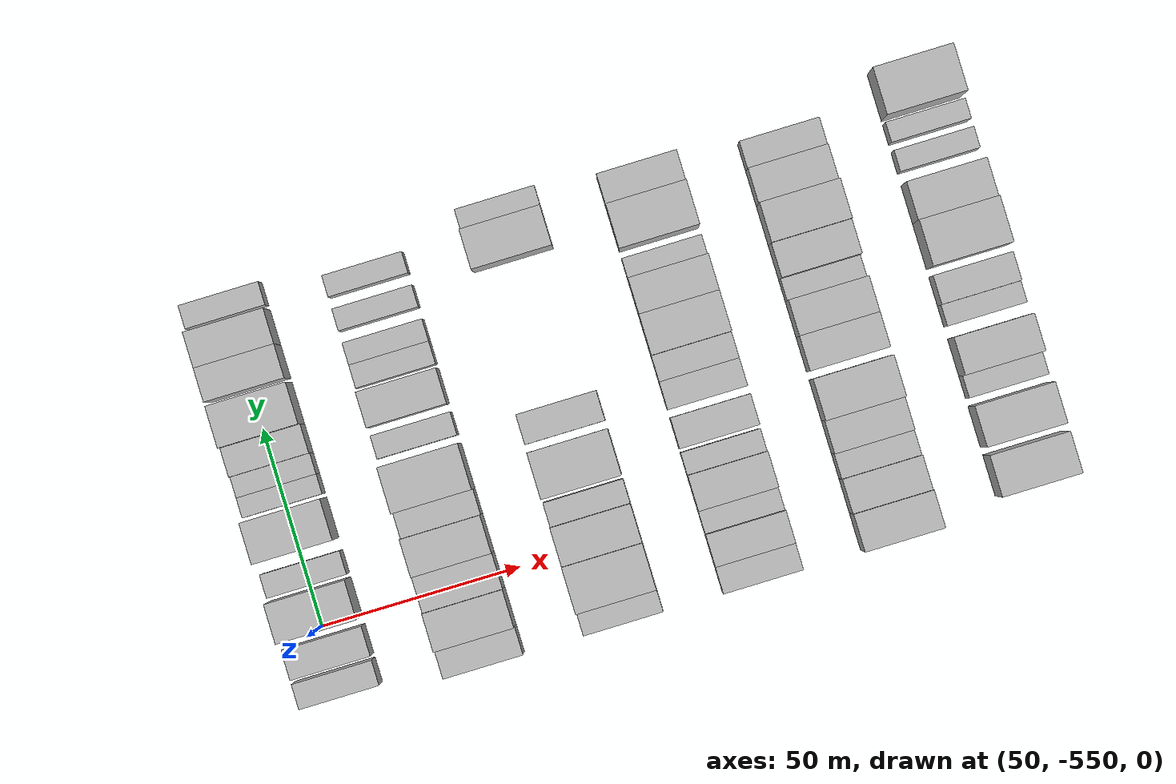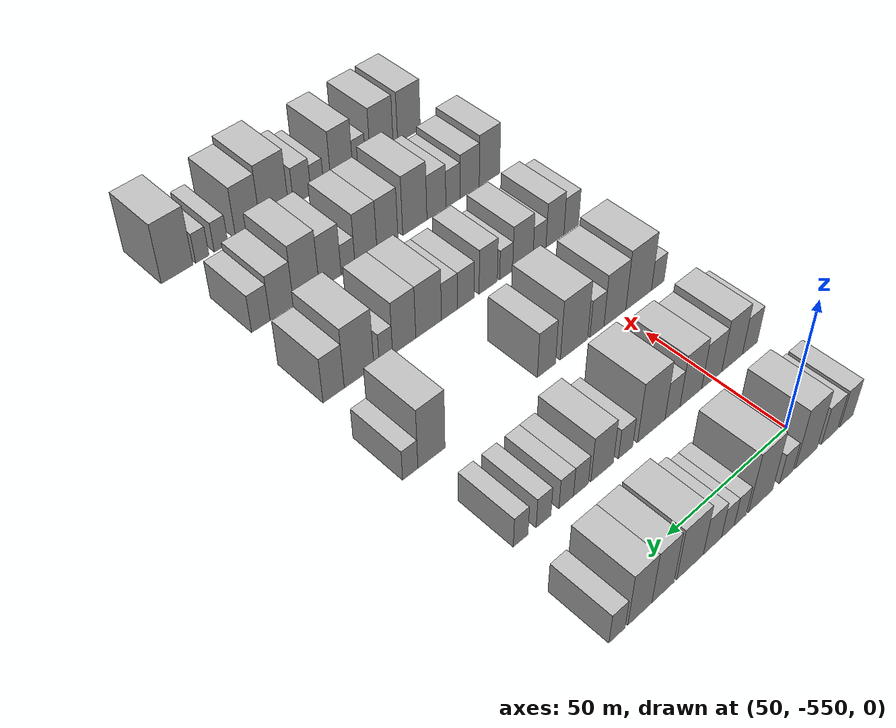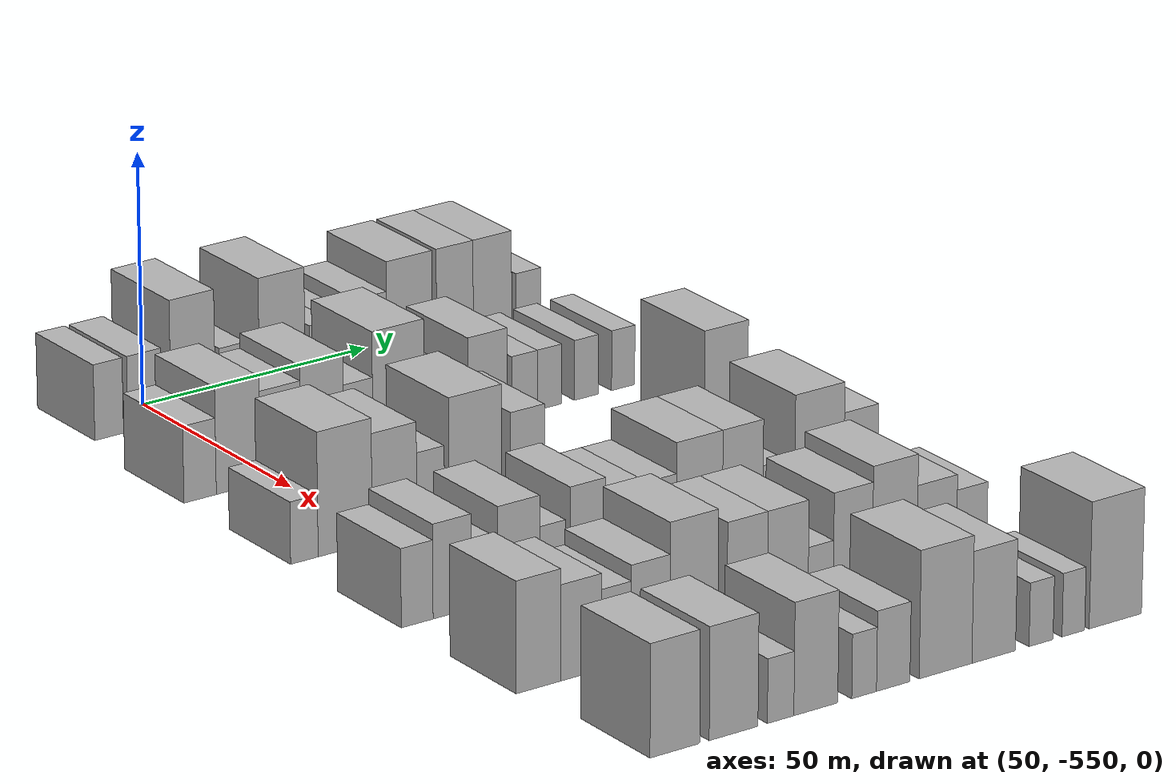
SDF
<sdf version="1.6">
 <world name="default">
  <model name="building_1">
   <static>1</static>
   <pose>50.0000 -563.8621 0 0.000000 0.000000 0.000000</pose>
   <link name="link">
    <pose>0 0 7.50 0 0 0</pose>
    <collision name="collision"><geometry><box><size>20.0000 6.2758 15.0000</size></box></geometry></collision>
    <visual name="visual">
     <cast_shadows>0</cast_shadows>
     <geometry><box><size>20.0000 6.2758 15.0000</size></box></geometry>
     <material>
      <script>
       <uri>model://HANNAS_wall/materials/scripts</uri>
       <uri>model://HANNAS_wall/materials/textures</uri>
       <name>vrc/HANNAS_wall</name>
      </script>
     </material>
    </visual>
   </link>
  </model>
  <model name="building_2">
   <static>1</static>
   <pose>50.0000 -555.9745 0 0.000000 0.000000 0.000000</pose>
   <link name="link">
    <pose>0 0 7.50 0 0 0</pose>
    <collision name="collision"><geometry><box><size>20.0000 7.4994 15.0000</size></box></geometry></collision>
    <visual name="visual">
     <cast_shadows>0</cast_shadows>
     <geometry><box><size>20.0000 7.4994 15.0000</size></box></geometry>
     <material>
      <script>
       <uri>model://HANNAS_wall/materials/scripts</uri>
       <uri>model://HANNAS_wall/materials/textures</uri>
       <name>vrc/HANNAS_wall</name>
      </script>
     </material>
    </visual>
   </link>
  </model>
  <model name="building_3">
   <static>1</static>
   <pose>50.0000 -545.3114 0 0.000000 0.000000 0.000000</pose>
   <link name="link">
    <pose>0 0 12.00 0 0 0</pose>
    <collision name="collision"><geometry><box><size>20.0000 9.8267 24.0000</size></box></geometry></collision>
    <visual name="visual">
     <cast_shadows>0</cast_shadows>
     <geometry><box><size>20.0000 9.8267 24.0000</size></box></geometry>
     <material>
      <script>
       <uri>model://HANNAS_wall/materials/scripts</uri>
       <uri>model://HANNAS_wall/materials/textures</uri>
       <name>vrc/HANNAS_wall</name>
      </script>
     </material>
    </visual>
   </link>
  </model>
  <model name="building_4">
   <static>1</static>
   <pose>50.0000 -536.4724 0 0.000000 0.000000 0.000000</pose>
   <link name="link">
    <pose>0 0 6.00 0 0 0</pose>
    <collision name="collision"><geometry><box><size>20.0000 5.8513 12.0000</size></box></geometry></collision>
    <visual name="visual">
     <cast_shadows>0</cast_shadows>
     <geometry><box><size>20.0000 5.8513 12.0000</size></box></geometry>
     <material>
      <script>
       <uri>model://HANNAS_wall/materials/scripts</uri>
       <uri>model://HANNAS_wall/materials/textures</uri>
       <name>vrc/HANNAS_wall</name>
      </script>
     </material>
    </visual>
   </link>
  </model>
  <model name="building_5">
   <static>1</static>
   <pose>50.0000 -525.4141 0 0.000000 0.000000 0.000000</pose>
   <link name="link">
    <pose>0 0 12.00 0 0 0</pose>
    <collision name="collision"><geometry><box><size>20.0000 10.2654 24.0000</size></box></geometry></collision>
    <visual name="visual">
     <cast_shadows>0</cast_shadows>
     <geometry><box><size>20.0000 10.2654 24.0000</size></box></geometry>
     <material>
      <script>
       <uri>model://HANNAS_wall/materials/scripts</uri>
       <uri>model://HANNAS_wall/materials/textures</uri>
       <name>vrc/HANNAS_wall</name>
      </script>
     </material>
    </visual>
   </link>
  </model>
  <model name="building_6">
   <static>1</static>
   <pose>50.0000 -516.7839 0 0.000000 0.000000 0.000000</pose>
   <link name="link">
    <pose>0 0 6.00 0 0 0</pose>
    <collision name="collision"><geometry><box><size>20.0000 4.9949 12.0000</size></box></geometry></collision>
    <visual name="visual">
     <cast_shadows>0</cast_shadows>
     <geometry><box><size>20.0000 4.9949 12.0000</size></box></geometry>
     <material>
      <script>
       <uri>model://HANNAS_wall/materials/scripts</uri>
       <uri>model://HANNAS_wall/materials/textures</uri>
       <name>vrc/HANNAS_wall</name>
      </script>
     </material>
    </visual>
   </link>
  </model>
  <model name="building_7">
   <static>1</static>
   <pose>50.0000 -511.6738 0 0.000000 0.000000 0.000000</pose>
   <link name="link">
    <pose>0 0 6.00 0 0 0</pose>
    <collision name="collision"><geometry><box><size>20.0000 5.2255 12.0000</size></box></geometry></collision>
    <visual name="visual">
     <cast_shadows>0</cast_shadows>
     <geometry><box><size>20.0000 5.2255 12.0000</size></box></geometry>
     <material>
      <script>
       <uri>model://HANNAS_wall/materials/scripts</uri>
       <uri>model://HANNAS_wall/materials/textures</uri>
       <name>vrc/HANNAS_wall</name>
      </script>
     </material>
    </visual>
   </link>
  </model>
  <model name="building_8">
   <static>1</static>
   <pose>50.0000 -505.4208 0 0.000000 0.000000 0.000000</pose>
   <link name="link">
    <pose>0 0 7.50 0 0 0</pose>
    <collision name="collision"><geometry><box><size>20.0000 7.2805 15.0000</size></box></geometry></collision>
    <visual name="visual">
     <cast_shadows>0</cast_shadows>
     <geometry><box><size>20.0000 7.2805 15.0000</size></box></geometry>
     <material>
      <script>
       <uri>model://HANNAS_wall/materials/scripts</uri>
       <uri>model://HANNAS_wall/materials/textures</uri>
       <name>vrc/HANNAS_wall</name>
      </script>
     </material>
    </visual>
   </link>
  </model>
  <model name="building_9">
   <static>1</static>
   <pose>50.0000 -496.5619 0 0.000000 0.000000 0.000000</pose>
   <link name="link">
    <pose>0 0 10.50 0 0 0</pose>
    <collision name="collision"><geometry><box><size>20.0000 10.4373 21.0000</size></box></geometry></collision>
    <visual name="visual">
     <cast_shadows>0</cast_shadows>
     <geometry><box><size>20.0000 10.4373 21.0000</size></box></geometry>
     <material>
      <script>
       <uri>model://HANNAS_wall/materials/scripts</uri>
       <uri>model://HANNAS_wall/materials/textures</uri>
       <name>vrc/HANNAS_wall</name>
      </script>
     </material>
    </visual>
   </link>
  </model>
  <model name="building_10">
   <static>1</static>
   <pose>50.0000 -486.1098 0 0.000000 0.000000 0.000000</pose>
   <link name="link">
    <pose>0 0 10.50 0 0 0</pose>
    <collision name="collision"><geometry><box><size>20.0000 8.4668 21.0000</size></box></geometry></collision>
    <visual name="visual">
     <cast_shadows>0</cast_shadows>
     <geometry><box><size>20.0000 8.4668 21.0000</size></box></geometry>
     <material>
      <script>
       <uri>model://HANNAS_wall/materials/scripts</uri>
       <uri>model://HANNAS_wall/materials/textures</uri>
       <name>vrc/HANNAS_wall</name>
      </script>
     </material>
    </visual>
   </link>
  </model>
  <model name="building_11">
   <static>1</static>
   <pose>50.0000 -477.4208 0 0.000000 0.000000 0.000000</pose>
   <link name="link">
    <pose>0 0 10.50 0 0 0</pose>
    <collision name="collision"><geometry><box><size>20.0000 8.9112 21.0000</size></box></geometry></collision>
    <visual name="visual">
     <cast_shadows>0</cast_shadows>
     <geometry><box><size>20.0000 8.9112 21.0000</size></box></geometry>
     <material>
      <script>
       <uri>model://HANNAS_wall/materials/scripts</uri>
       <uri>model://HANNAS_wall/materials/textures</uri>
       <name>vrc/HANNAS_wall</name>
      </script>
     </material>
    </visual>
   </link>
  </model>
  <model name="building_12">
   <static>1</static>
   <pose>50.0000 -469.0451 0 0.000000 0.000000 0.000000</pose>
   <link name="link">
    <pose>0 0 6.00 0 0 0</pose>
    <collision name="collision"><geometry><box><size>20.0000 5.8403 12.0000</size></box></geometry></collision>
    <visual name="visual">
     <cast_shadows>0</cast_shadows>
     <geometry><box><size>20.0000 5.8403 12.0000</size></box></geometry>
     <material>
      <script>
       <uri>model://HANNAS_wall/materials/scripts</uri>
       <uri>model://HANNAS_wall/materials/textures</uri>
       <name>vrc/HANNAS_wall</name>
      </script>
     </material>
    </visual>
   </link>
  </model>
  <model name="building_126">
   <static>1</static>
   <pose>85.0000 -566.5044 0 0.000000 0.000000 0.000000</pose>
   <link name="link">
    <pose>0 0 7.50 0 0 0</pose>
    <collision name="collision"><geometry><box><size>20.0000 6.9913 15.0000</size></box></geometry></collision>
    <visual name="visual">
     <cast_shadows>0</cast_shadows>
     <geometry><box><size>20.0000 6.9913 15.0000</size></box></geometry>
     <material>
      <script>
       <uri>model://HANNAS_wall/materials/scripts</uri>
       <uri>model://HANNAS_wall/materials/textures</uri>
       <name>vrc/HANNAS_wall</name>
      </script>
     </material>
    </visual>
   </link>
  </model>
  <model name="building_127">
   <static>1</static>
   <pose>85.0000 -558.2319 0 0.000000 0.000000 0.000000</pose>
   <link name="link">
    <pose>0 0 10.50 0 0 0</pose>
    <collision name="collision"><geometry><box><size>20.0000 9.5536 21.0000</size></box></geometry></collision>
    <visual name="visual">
     <cast_shadows>0</cast_shadows>
     <geometry><box><size>20.0000 9.5536 21.0000</size></box></geometry>
     <material>
      <script>
       <uri>model://HANNAS_wall/materials/scripts</uri>
       <uri>model://HANNAS_wall/materials/textures</uri>
       <name>vrc/HANNAS_wall</name>
      </script>
     </material>
    </visual>
   </link>
  </model>
  <model name="building_128">
   <static>1</static>
   <pose>85.0000 -548.9827 0 0.000000 0.000000 0.000000</pose>
   <link name="link">
    <pose>0 0 9.00 0 0 0</pose>
    <collision name="collision"><geometry><box><size>20.0000 8.9449 18.0000</size></box></geometry></collision>
    <visual name="visual">
     <cast_shadows>0</cast_shadows>
     <geometry><box><size>20.0000 8.9449 18.0000</size></box></geometry>
     <material>
      <script>
       <uri>model://HANNAS_wall/materials/scripts</uri>
       <uri>model://HANNAS_wall/materials/textures</uri>
       <name>vrc/HANNAS_wall</name>
      </script>
     </material>
    </visual>
   </link>
  </model>
  <model name="building_129">
   <static>1</static>
   <pose>85.0000 -539.7710 0 0.000000 0.000000 0.000000</pose>
   <link name="link">
    <pose>0 0 10.50 0 0 0</pose>
    <collision name="collision"><geometry><box><size>20.0000 9.4784 21.0000</size></box></geometry></collision>
    <visual name="visual">
     <cast_shadows>0</cast_shadows>
     <geometry><box><size>20.0000 9.4784 21.0000</size></box></geometry>
     <material>
      <script>
       <uri>model://HANNAS_wall/materials/scripts</uri>
       <uri>model://HANNAS_wall/materials/textures</uri>
       <name>vrc/HANNAS_wall</name>
      </script>
     </material>
    </visual>
   </link>
  </model>
  <model name="building_130">
   <static>1</static>
   <pose>85.0000 -531.8286 0 0.000000 0.000000 0.000000</pose>
   <link name="link">
    <pose>0 0 7.50 0 0 0</pose>
    <collision name="collision"><geometry><box><size>20.0000 6.4063 15.0000</size></box></geometry></collision>
    <visual name="visual">
     <cast_shadows>0</cast_shadows>
     <geometry><box><size>20.0000 6.4063 15.0000</size></box></geometry>
     <material>
      <script>
       <uri>model://HANNAS_wall/materials/scripts</uri>
       <uri>model://HANNAS_wall/materials/textures</uri>
       <name>vrc/HANNAS_wall</name>
      </script>
     </material>
    </visual>
   </link>
  </model>
  <model name="building_131">
   <static>1</static>
   <pose>85.0000 -522.8982 0 0.000000 0.000000 0.000000</pose>
   <link name="link">
    <pose>0 0 12.00 0 0 0</pose>
    <collision name="collision"><geometry><box><size>20.0000 11.4545 24.0000</size></box></geometry></collision>
    <visual name="visual">
     <cast_shadows>0</cast_shadows>
     <geometry><box><size>20.0000 11.4545 24.0000</size></box></geometry>
     <material>
      <script>
       <uri>model://HANNAS_wall/materials/scripts</uri>
       <uri>model://HANNAS_wall/materials/textures</uri>
       <name>vrc/HANNAS_wall</name>
      </script>
     </material>
    </visual>
   </link>
  </model>
  <model name="building_132">
   <static>1</static>
   <pose>85.0000 -512.2588 0 0.000000 0.000000 0.000000</pose>
   <link name="link">
    <pose>0 0 6.00 0 0 0</pose>
    <collision name="collision"><geometry><box><size>20.0000 5.8243 12.0000</size></box></geometry></collision>
    <visual name="visual">
     <cast_shadows>0</cast_shadows>
     <geometry><box><size>20.0000 5.8243 12.0000</size></box></geometry>
     <material>
      <script>
       <uri>model://HANNAS_wall/materials/scripts</uri>
       <uri>model://HANNAS_wall/materials/textures</uri>
       <name>vrc/HANNAS_wall</name>
      </script>
     </material>
    </visual>
   </link>
  </model>
  <model name="building_133">
   <static>1</static>
   <pose>85.0000 -502.8790 0 0.000000 0.000000 0.000000</pose>
   <link name="link">
    <pose>0 0 9.00 0 0 0</pose>
    <collision name="collision"><geometry><box><size>20.0000 8.9354 18.0000</size></box></geometry></collision>
    <visual name="visual">
     <cast_shadows>0</cast_shadows>
     <geometry><box><size>20.0000 8.9354 18.0000</size></box></geometry>
     <material>
      <script>
       <uri>model://HANNAS_wall/materials/scripts</uri>
       <uri>model://HANNAS_wall/materials/textures</uri>
       <name>vrc/HANNAS_wall</name>
      </script>
     </material>
    </visual>
   </link>
  </model>
  <model name="building_134">
   <static>1</static>
   <pose>85.0000 -494.5192 0 0.000000 0.000000 0.000000</pose>
   <link name="link">
    <pose>0 0 6.00 0 0 0</pose>
    <collision name="collision"><geometry><box><size>20.0000 5.7841 12.0000</size></box></geometry></collision>
    <visual name="visual">
     <cast_shadows>0</cast_shadows>
     <geometry><box><size>20.0000 5.7841 12.0000</size></box></geometry>
     <material>
      <script>
       <uri>model://HANNAS_wall/materials/scripts</uri>
       <uri>model://HANNAS_wall/materials/textures</uri>
       <name>vrc/HANNAS_wall</name>
      </script>
     </material>
    </visual>
   </link>
  </model>
  <model name="building_135">
   <static>1</static>
   <pose>85.0000 -488.8572 0 0.000000 0.000000 0.000000</pose>
   <link name="link">
    <pose>0 0 6.00 0 0 0</pose>
    <collision name="collision"><geometry><box><size>20.0000 5.5400 12.0000</size></box></geometry></collision>
    <visual name="visual">
     <cast_shadows>0</cast_shadows>
     <geometry><box><size>20.0000 5.5400 12.0000</size></box></geometry>
     <material>
      <script>
       <uri>model://HANNAS_wall/materials/scripts</uri>
       <uri>model://HANNAS_wall/materials/textures</uri>
       <name>vrc/HANNAS_wall</name>
      </script>
     </material>
    </visual>
   </link>
  </model>
  <model name="building_136">
   <static>1</static>
   <pose>85.0000 -480.3335 0 0.000000 0.000000 0.000000</pose>
   <link name="link">
    <pose>0 0 6.00 0 0 0</pose>
    <collision name="collision"><geometry><box><size>20.0000 5.5074 12.0000</size></box></geometry></collision>
    <visual name="visual">
     <cast_shadows>0</cast_shadows>
     <geometry><box><size>20.0000 5.5074 12.0000</size></box></geometry>
     <material>
      <script>
       <uri>model://HANNAS_wall/materials/scripts</uri>
       <uri>model://HANNAS_wall/materials/textures</uri>
       <name>vrc/HANNAS_wall</name>
      </script>
     </material>
    </visual>
   </link>
  </model>
  <model name="building_137">
   <static>1</static>
   <pose>85.0000 -471.9026 0 0.000000 0.000000 0.000000</pose>
   <link name="link">
    <pose>0 0 6.00 0 0 0</pose>
    <collision name="collision"><geometry><box><size>20.0000 5.3545 12.0000</size></box></geometry></collision>
    <visual name="visual">
     <cast_shadows>0</cast_shadows>
     <geometry><box><size>20.0000 5.3545 12.0000</size></box></geometry>
     <material>
      <script>
       <uri>model://HANNAS_wall/materials/scripts</uri>
       <uri>model://HANNAS_wall/materials/textures</uri>
       <name>vrc/HANNAS_wall</name>
      </script>
     </material>
    </visual>
   </link>
  </model>
  <model name="building_262">
   <static>1</static>
   <pose>120.0000 -567.0557 0 0.000000 0.000000 0.000000</pose>
   <link name="link">
    <pose>0 0 6.00 0 0 0</pose>
    <collision name="collision"><geometry><box><size>20.0000 5.8886 12.0000</size></box></geometry></collision>
    <visual name="visual">
     <cast_shadows>0</cast_shadows>
     <geometry><box><size>20.0000 5.8886 12.0000</size></box></geometry>
     <material>
      <script>
       <uri>model://HANNAS_wall/materials/scripts</uri>
       <uri>model://HANNAS_wall/materials/textures</uri>
       <name>vrc/HANNAS_wall</name>
      </script>
     </material>
    </visual>
   </link>
  </model>
  <model name="building_263">
   <static>1</static>
   <pose>120.0000 -558.2851 0 0.000000 0.000000 0.000000</pose>
   <link name="link">
    <pose>0 0 12.00 0 0 0</pose>
    <collision name="collision"><geometry><box><size>20.0000 11.6525 24.0000</size></box></geometry></collision>
    <visual name="visual">
     <cast_shadows>0</cast_shadows>
     <geometry><box><size>20.0000 11.6525 24.0000</size></box></geometry>
     <material>
      <script>
       <uri>model://HANNAS_wall/materials/scripts</uri>
       <uri>model://HANNAS_wall/materials/textures</uri>
       <name>vrc/HANNAS_wall</name>
      </script>
     </material>
    </visual>
   </link>
  </model>
  <model name="building_264">
   <static>1</static>
   <pose>120.0000 -547.6098 0 0.000000 0.000000 0.000000</pose>
   <link name="link">
    <pose>0 0 10.50 0 0 0</pose>
    <collision name="collision"><geometry><box><size>20.0000 9.6982 21.0000</size></box></geometry></collision>
    <visual name="visual">
     <cast_shadows>0</cast_shadows>
     <geometry><box><size>20.0000 9.6982 21.0000</size></box></geometry>
     <material>
      <script>
       <uri>model://HANNAS_wall/materials/scripts</uri>
       <uri>model://HANNAS_wall/materials/textures</uri>
       <name>vrc/HANNAS_wall</name>
      </script>
     </material>
    </visual>
   </link>
  </model>
  <model name="building_265">
   <static>1</static>
   <pose>120.0000 -539.7354 0 0.000000 0.000000 0.000000</pose>
   <link name="link">
    <pose>0 0 7.50 0 0 0</pose>
    <collision name="collision"><geometry><box><size>20.0000 6.0506 15.0000</size></box></geometry></collision>
    <visual name="visual">
     <cast_shadows>0</cast_shadows>
     <geometry><box><size>20.0000 6.0506 15.0000</size></box></geometry>
     <material>
      <script>
       <uri>model://HANNAS_wall/materials/scripts</uri>
       <uri>model://HANNAS_wall/materials/textures</uri>
       <name>vrc/HANNAS_wall</name>
      </script>
     </material>
    </visual>
   </link>
  </model>
  <model name="building_266">
   <static>1</static>
   <pose>120.0000 -529.9247 0 0.000000 0.000000 0.000000</pose>
   <link name="link">
    <pose>0 0 12.00 0 0 0</pose>
    <collision name="collision"><geometry><box><size>20.0000 11.5708 24.0000</size></box></geometry></collision>
    <visual name="visual">
     <cast_shadows>0</cast_shadows>
     <geometry><box><size>20.0000 11.5708 24.0000</size></box></geometry>
     <material>
      <script>
       <uri>model://HANNAS_wall/materials/scripts</uri>
       <uri>model://HANNAS_wall/materials/textures</uri>
       <name>vrc/HANNAS_wall</name>
      </script>
     </material>
    </visual>
   </link>
  </model>
  <model name="building_267">
   <static>1</static>
   <pose>120.0000 -518.3968 0 0.000000 0.000000 0.000000</pose>
   <link name="link">
    <pose>0 0 9.00 0 0 0</pose>
    <collision name="collision"><geometry><box><size>20.0000 7.4851 18.0000</size></box></geometry></collision>
    <visual name="visual">
     <cast_shadows>0</cast_shadows>
     <geometry><box><size>20.0000 7.4851 18.0000</size></box></geometry>
     <material>
      <script>
       <uri>model://HANNAS_wall/materials/scripts</uri>
       <uri>model://HANNAS_wall/materials/textures</uri>
       <name>vrc/HANNAS_wall</name>
      </script>
     </material>
    </visual>
   </link>
  </model>
  <model name="building_268">
   <static>1</static>
   <pose>120.0000 -473.7348 0 0.000000 0.000000 0.000000</pose>
   <link name="link">
    <pose>0 0 12.00 0 0 0</pose>
    <collision name="collision"><geometry><box><size>20.0000 9.9463 24.0000</size></box></geometry></collision>
    <visual name="visual">
     <cast_shadows>0</cast_shadows>
     <geometry><box><size>20.0000 9.9463 24.0000</size></box></geometry>
     <material>
      <script>
       <uri>model://HANNAS_wall/materials/scripts</uri>
       <uri>model://HANNAS_wall/materials/textures</uri>
       <name>vrc/HANNAS_wall</name>
      </script>
     </material>
    </visual>
   </link>
  </model>
  <model name="building_269">
   <static>1</static>
   <pose>120.0000 -466.0131 0 0.000000 0.000000 0.000000</pose>
   <link name="link">
    <pose>0 0 6.00 0 0 0</pose>
    <collision name="collision"><geometry><box><size>20.0000 5.4969 12.0000</size></box></geometry></collision>
    <visual name="visual">
     <cast_shadows>0</cast_shadows>
     <geometry><box><size>20.0000 5.4969 12.0000</size></box></geometry>
     <material>
      <script>
       <uri>model://HANNAS_wall/materials/scripts</uri>
       <uri>model://HANNAS_wall/materials/textures</uri>
       <name>vrc/HANNAS_wall</name>
      </script>
     </material>
    </visual>
   </link>
  </model>
  <model name="building_381">
   <static>1</static>
   <pose>155.0000 -566.6282 0 0.000000 0.000000 0.000000</pose>
   <link name="link">
    <pose>0 0 7.50 0 0 0</pose>
    <collision name="collision"><geometry><box><size>20.0000 6.7436 15.0000</size></box></geometry></collision>
    <visual name="visual">
     <cast_shadows>0</cast_shadows>
     <geometry><box><size>20.0000 6.7436 15.0000</size></box></geometry>
     <material>
      <script>
       <uri>model://HANNAS_wall/materials/scripts</uri>
       <uri>model://HANNAS_wall/materials/textures</uri>
       <name>vrc/HANNAS_wall</name>
      </script>
     </material>
    </visual>
   </link>
  </model>
  <model name="building_382">
   <static>1</static>
   <pose>155.0000 -559.1929 0 0.000000 0.000000 0.000000</pose>
   <link name="link">
    <pose>0 0 9.00 0 0 0</pose>
    <collision name="collision"><geometry><box><size>20.0000 8.1270 18.0000</size></box></geometry></collision>
    <visual name="visual">
     <cast_shadows>0</cast_shadows>
     <geometry><box><size>20.0000 8.1270 18.0000</size></box></geometry>
     <material>
      <script>
       <uri>model://HANNAS_wall/materials/scripts</uri>
       <uri>model://HANNAS_wall/materials/textures</uri>
       <name>vrc/HANNAS_wall</name>
      </script>
     </material>
    </visual>
   </link>
  </model>
  <model name="building_383">
   <static>1</static>
   <pose>155.0000 -552.2431 0 0.000000 0.000000 0.000000</pose>
   <link name="link">
    <pose>0 0 6.00 0 0 0</pose>
    <collision name="collision"><geometry><box><size>20.0000 5.7726 12.0000</size></box></geometry></collision>
    <visual name="visual">
     <cast_shadows>0</cast_shadows>
     <geometry><box><size>20.0000 5.7726 12.0000</size></box></geometry>
     <material>
      <script>
       <uri>model://HANNAS_wall/materials/scripts</uri>
       <uri>model://HANNAS_wall/materials/textures</uri>
       <name>vrc/HANNAS_wall</name>
      </script>
     </material>
    </visual>
   </link>
  </model>
  <model name="building_384">
   <static>1</static>
   <pose>155.0000 -544.8765 0 0.000000 0.000000 0.000000</pose>
   <link name="link">
    <pose>0 0 9.00 0 0 0</pose>
    <collision name="collision"><geometry><box><size>20.0000 8.9606 18.0000</size></box></geometry></collision>
    <visual name="visual">
     <cast_shadows>0</cast_shadows>
     <geometry><box><size>20.0000 8.9606 18.0000</size></box></geometry>
     <material>
      <script>
       <uri>model://HANNAS_wall/materials/scripts</uri>
       <uri>model://HANNAS_wall/materials/textures</uri>
       <name>vrc/HANNAS_wall</name>
      </script>
     </material>
    </visual>
   </link>
  </model>
  <model name="building_385">
   <static>1</static>
   <pose>155.0000 -537.5911 0 0.000000 0.000000 0.000000</pose>
   <link name="link">
    <pose>0 0 6.00 0 0 0</pose>
    <collision name="collision"><geometry><box><size>20.0000 5.6103 12.0000</size></box></geometry></collision>
    <visual name="visual">
     <cast_shadows>0</cast_shadows>
     <geometry><box><size>20.0000 5.6103 12.0000</size></box></geometry>
     <material>
      <script>
       <uri>model://HANNAS_wall/materials/scripts</uri>
       <uri>model://HANNAS_wall/materials/textures</uri>
       <name>vrc/HANNAS_wall</name>
      </script>
     </material>
    </visual>
   </link>
  </model>
  <model name="building_386">
   <static>1</static>
   <pose>155.0000 -529.9286 0 0.000000 0.000000 0.000000</pose>
   <link name="link">
    <pose>0 0 9.00 0 0 0</pose>
    <collision name="collision"><geometry><box><size>20.0000 7.7147 18.0000</size></box></geometry></collision>
    <visual name="visual">
     <cast_shadows>0</cast_shadows>
     <geometry><box><size>20.0000 7.7147 18.0000</size></box></geometry>
     <material>
      <script>
       <uri>model://HANNAS_wall/materials/scripts</uri>
       <uri>model://HANNAS_wall/materials/textures</uri>
       <name>vrc/HANNAS_wall</name>
      </script>
     </material>
    </visual>
   </link>
  </model>
  <model name="building_387">
   <static>1</static>
   <pose>155.0000 -520.5790 0 0.000000 0.000000 0.000000</pose>
   <link name="link">
    <pose>0 0 7.50 0 0 0</pose>
    <collision name="collision"><geometry><box><size>20.0000 6.9844 15.0000</size></box></geometry></collision>
    <visual name="visual">
     <cast_shadows>0</cast_shadows>
     <geometry><box><size>20.0000 6.9844 15.0000</size></box></geometry>
     <material>
      <script>
       <uri>model://HANNAS_wall/materials/scripts</uri>
       <uri>model://HANNAS_wall/materials/textures</uri>
       <name>vrc/HANNAS_wall</name>
      </script>
     </material>
    </visual>
   </link>
  </model>
  <model name="building_388">
   <static>1</static>
   <pose>155.0000 -513.8232 0 0.000000 0.000000 0.000000</pose>
   <link name="link">
    <pose>0 0 7.50 0 0 0</pose>
    <collision name="collision"><geometry><box><size>20.0000 6.5274 15.0000</size></box></geometry></collision>
    <visual name="visual">
     <cast_shadows>0</cast_shadows>
     <geometry><box><size>20.0000 6.5274 15.0000</size></box></geometry>
     <material>
      <script>
       <uri>model://HANNAS_wall/materials/scripts</uri>
       <uri>model://HANNAS_wall/materials/textures</uri>
       <name>vrc/HANNAS_wall</name>
      </script>
     </material>
    </visual>
   </link>
  </model>
  <model name="building_389">
   <static>1</static>
   <pose>155.0000 -505.4355 0 0.000000 0.000000 0.000000</pose>
   <link name="link">
    <pose>0 0 10.50 0 0 0</pose>
    <collision name="collision"><geometry><box><size>20.0000 10.2479 21.0000</size></box></geometry></collision>
    <visual name="visual">
     <cast_shadows>0</cast_shadows>
     <geometry><box><size>20.0000 10.2479 21.0000</size></box></geometry>
     <material>
      <script>
       <uri>model://HANNAS_wall/materials/scripts</uri>
       <uri>model://HANNAS_wall/materials/textures</uri>
       <name>vrc/HANNAS_wall</name>
      </script>
     </material>
    </visual>
   </link>
  </model>
  <model name="building_390">
   <static>1</static>
   <pose>155.0000 -495.7943 0 0.000000 0.000000 0.000000</pose>
   <link name="link">
    <pose>0 0 10.50 0 0 0</pose>
    <collision name="collision"><geometry><box><size>20.0000 9.0345 21.0000</size></box></geometry></collision>
    <visual name="visual">
     <cast_shadows>0</cast_shadows>
     <geometry><box><size>20.0000 9.0345 21.0000</size></box></geometry>
     <material>
      <script>
       <uri>model://HANNAS_wall/materials/scripts</uri>
       <uri>model://HANNAS_wall/materials/textures</uri>
       <name>vrc/HANNAS_wall</name>
      </script>
     </material>
    </visual>
   </link>
  </model>
  <model name="building_391">
   <static>1</static>
   <pose>155.0000 -488.7137 0 0.000000 0.000000 0.000000</pose>
   <link name="link">
    <pose>0 0 6.00 0 0 0</pose>
    <collision name="collision"><geometry><box><size>20.0000 5.1267 12.0000</size></box></geometry></collision>
    <visual name="visual">
     <cast_shadows>0</cast_shadows>
     <geometry><box><size>20.0000 5.1267 12.0000</size></box></geometry>
     <material>
      <script>
       <uri>model://HANNAS_wall/materials/scripts</uri>
       <uri>model://HANNAS_wall/materials/textures</uri>
       <name>vrc/HANNAS_wall</name>
      </script>
     </material>
    </visual>
   </link>
  </model>
  <model name="building_392">
   <static>1</static>
   <pose>155.0000 -478.6050 0 0.000000 0.000000 0.000000</pose>
   <link name="link">
    <pose>0 0 12.00 0 0 0</pose>
    <collision name="collision"><geometry><box><size>20.0000 11.0906 24.0000</size></box></geometry></collision>
    <visual name="visual">
     <cast_shadows>0</cast_shadows>
     <geometry><box><size>20.0000 11.0906 24.0000</size></box></geometry>
     <material>
      <script>
       <uri>model://HANNAS_wall/materials/scripts</uri>
       <uri>model://HANNAS_wall/materials/textures</uri>
       <name>vrc/HANNAS_wall</name>
      </script>
     </material>
    </visual>
   </link>
  </model>
  <model name="building_393">
   <static>1</static>
   <pose>155.0000 -469.1867 0 0.000000 0.000000 0.000000</pose>
   <link name="link">
    <pose>0 0 9.00 0 0 0</pose>
    <collision name="collision"><geometry><box><size>20.0000 7.7460 18.0000</size></box></geometry></collision>
    <visual name="visual">
     <cast_shadows>0</cast_shadows>
     <geometry><box><size>20.0000 7.7460 18.0000</size></box></geometry>
     <material>
      <script>
       <uri>model://HANNAS_wall/materials/scripts</uri>
       <uri>model://HANNAS_wall/materials/textures</uri>
       <name>vrc/HANNAS_wall</name>
      </script>
     </material>
    </visual>
   </link>
  </model>
  <model name="building_507">
   <static>1</static>
   <pose>190.0000 -565.3014 0 0.000000 0.000000 0.000000</pose>
   <link name="link">
    <pose>0 0 10.50 0 0 0</pose>
    <collision name="collision"><geometry><box><size>20.0000 9.3972 21.0000</size></box></geometry></collision>
    <visual name="visual">
     <cast_shadows>0</cast_shadows>
     <geometry><box><size>20.0000 9.3972 21.0000</size></box></geometry>
     <material>
      <script>
       <uri>model://HANNAS_wall/materials/scripts</uri>
       <uri>model://HANNAS_wall/materials/textures</uri>
       <name>vrc/HANNAS_wall</name>
      </script>
     </material>
    </visual>
   </link>
  </model>
  <model name="building_508">
   <static>1</static>
   <pose>190.0000 -556.2827 0 0.000000 0.000000 0.000000</pose>
   <link name="link">
    <pose>0 0 9.00 0 0 0</pose>
    <collision name="collision"><geometry><box><size>20.0000 8.6401 18.0000</size></box></geometry></collision>
    <visual name="visual">
     <cast_shadows>0</cast_shadows>
     <geometry><box><size>20.0000 8.6401 18.0000</size></box></geometry>
     <material>
      <script>
       <uri>model://HANNAS_wall/materials/scripts</uri>
       <uri>model://HANNAS_wall/materials/textures</uri>
       <name>vrc/HANNAS_wall</name>
      </script>
     </material>
    </visual>
   </link>
  </model>
  <model name="building_509">
   <static>1</static>
   <pose>190.0000 -548.8218 0 0.000000 0.000000 0.000000</pose>
   <link name="link">
    <pose>0 0 7.50 0 0 0</pose>
    <collision name="collision"><geometry><box><size>20.0000 6.2819 15.0000</size></box></geometry></collision>
    <visual name="visual">
     <cast_shadows>0</cast_shadows>
     <geometry><box><size>20.0000 6.2819 15.0000</size></box></geometry>
     <material>
      <script>
       <uri>model://HANNAS_wall/materials/scripts</uri>
       <uri>model://HANNAS_wall/materials/textures</uri>
       <name>vrc/HANNAS_wall</name>
      </script>
     </material>
    </visual>
   </link>
  </model>
  <model name="building_510">
   <static>1</static>
   <pose>190.0000 -541.5488 0 0.000000 0.000000 0.000000</pose>
   <link name="link">
    <pose>0 0 9.00 0 0 0</pose>
    <collision name="collision"><geometry><box><size>20.0000 8.2641 18.0000</size></box></geometry></collision>
    <visual name="visual">
     <cast_shadows>0</cast_shadows>
     <geometry><box><size>20.0000 8.2641 18.0000</size></box></geometry>
     <material>
      <script>
       <uri>model://HANNAS_wall/materials/scripts</uri>
       <uri>model://HANNAS_wall/materials/textures</uri>
       <name>vrc/HANNAS_wall</name>
      </script>
     </material>
    </visual>
   </link>
  </model>
  <model name="building_511">
   <static>1</static>
   <pose>190.0000 -532.2472 0 0.000000 0.000000 0.000000</pose>
   <link name="link">
    <pose>0 0 12.00 0 0 0</pose>
    <collision name="collision"><geometry><box><size>20.0000 10.3391 24.0000</size></box></geometry></collision>
    <visual name="visual">
     <cast_shadows>0</cast_shadows>
     <geometry><box><size>20.0000 10.3391 24.0000</size></box></geometry>
     <material>
      <script>
       <uri>model://HANNAS_wall/materials/scripts</uri>
       <uri>model://HANNAS_wall/materials/textures</uri>
       <name>vrc/HANNAS_wall</name>
      </script>
     </material>
    </visual>
   </link>
  </model>
  <model name="building_512">
   <static>1</static>
   <pose>190.0000 -520.7125 0 0.000000 0.000000 0.000000</pose>
   <link name="link">
    <pose>0 0 10.50 0 0 0</pose>
    <collision name="collision"><geometry><box><size>20.0000 8.7301 21.0000</size></box></geometry></collision>
    <visual name="visual">
     <cast_shadows>0</cast_shadows>
     <geometry><box><size>20.0000 8.7301 21.0000</size></box></geometry>
     <material>
      <script>
       <uri>model://HANNAS_wall/materials/scripts</uri>
       <uri>model://HANNAS_wall/materials/textures</uri>
       <name>vrc/HANNAS_wall</name>
      </script>
     </material>
    </visual>
   </link>
  </model>
  <model name="building_513">
   <static>1</static>
   <pose>190.0000 -511.8805 0 0.000000 0.000000 0.000000</pose>
   <link name="link">
    <pose>0 0 10.50 0 0 0</pose>
    <collision name="collision"><geometry><box><size>20.0000 8.9339 21.0000</size></box></geometry></collision>
    <visual name="visual">
     <cast_shadows>0</cast_shadows>
     <geometry><box><size>20.0000 8.9339 21.0000</size></box></geometry>
     <material>
      <script>
       <uri>model://HANNAS_wall/materials/scripts</uri>
       <uri>model://HANNAS_wall/materials/textures</uri>
       <name>vrc/HANNAS_wall</name>
      </script>
     </material>
    </visual>
   </link>
  </model>
  <model name="building_514">
   <static>1</static>
   <pose>190.0000 -504.6506 0 0.000000 0.000000 0.000000</pose>
   <link name="link">
    <pose>0 0 6.00 0 0 0</pose>
    <collision name="collision"><geometry><box><size>20.0000 5.5259 12.0000</size></box></geometry></collision>
    <visual name="visual">
     <cast_shadows>0</cast_shadows>
     <geometry><box><size>20.0000 5.5259 12.0000</size></box></geometry>
     <material>
      <script>
       <uri>model://HANNAS_wall/materials/scripts</uri>
       <uri>model://HANNAS_wall/materials/textures</uri>
       <name>vrc/HANNAS_wall</name>
      </script>
     </material>
    </visual>
   </link>
  </model>
  <model name="building_515">
   <static>1</static>
   <pose>190.0000 -497.5865 0 0.000000 0.000000 0.000000</pose>
   <link name="link">
    <pose>0 0 10.50 0 0 0</pose>
    <collision name="collision"><geometry><box><size>20.0000 8.6024 21.0000</size></box></geometry></collision>
    <visual name="visual">
     <cast_shadows>0</cast_shadows>
     <geometry><box><size>20.0000 8.6024 21.0000</size></box></geometry>
     <material>
      <script>
       <uri>model://HANNAS_wall/materials/scripts</uri>
       <uri>model://HANNAS_wall/materials/textures</uri>
       <name>vrc/HANNAS_wall</name>
      </script>
     </material>
    </visual>
   </link>
  </model>
  <model name="building_516">
   <static>1</static>
   <pose>190.0000 -488.3154 0 0.000000 0.000000 0.000000</pose>
   <link name="link">
    <pose>0 0 12.00 0 0 0</pose>
    <collision name="collision"><geometry><box><size>20.0000 9.9398 24.0000</size></box></geometry></collision>
    <visual name="visual">
     <cast_shadows>0</cast_shadows>
     <geometry><box><size>20.0000 9.9398 24.0000</size></box></geometry>
     <material>
      <script>
       <uri>model://HANNAS_wall/materials/scripts</uri>
       <uri>model://HANNAS_wall/materials/textures</uri>
       <name>vrc/HANNAS_wall</name>
      </script>
     </material>
    </visual>
   </link>
  </model>
  <model name="building_517">
   <static>1</static>
   <pose>190.0000 -478.9128 0 0.000000 0.000000 0.000000</pose>
   <link name="link">
    <pose>0 0 9.00 0 0 0</pose>
    <collision name="collision"><geometry><box><size>20.0000 8.8654 18.0000</size></box></geometry></collision>
    <visual name="visual">
     <cast_shadows>0</cast_shadows>
     <geometry><box><size>20.0000 8.8654 18.0000</size></box></geometry>
     <material>
      <script>
       <uri>model://HANNAS_wall/materials/scripts</uri>
       <uri>model://HANNAS_wall/materials/textures</uri>
       <name>vrc/HANNAS_wall</name>
      </script>
     </material>
    </visual>
   </link>
  </model>
  <model name="building_518">
   <static>1</static>
   <pose>190.0000 -471.0413 0 0.000000 0.000000 0.000000</pose>
   <link name="link">
    <pose>0 0 7.50 0 0 0</pose>
    <collision name="collision"><geometry><box><size>20.0000 6.8776 15.0000</size></box></geometry></collision>
    <visual name="visual">
     <cast_shadows>0</cast_shadows>
     <geometry><box><size>20.0000 6.8776 15.0000</size></box></geometry>
     <material>
      <script>
       <uri>model://HANNAS_wall/materials/scripts</uri>
       <uri>model://HANNAS_wall/materials/textures</uri>
       <name>vrc/HANNAS_wall</name>
      </script>
     </material>
    </visual>
   </link>
  </model>
  <model name="building_634">
   <static>1</static>
   <pose>225.0000 -561.8101 0 0.000000 0.000000 0.000000</pose>
   <link name="link">
    <pose>0 0 10.50 0 0 0</pose>
    <collision name="collision"><geometry><box><size>20.0000 10.3798 21.0000</size></box></geometry></collision>
    <visual name="visual">
     <cast_shadows>0</cast_shadows>
     <geometry><box><size>20.0000 10.3798 21.0000</size></box></geometry>
     <material>
      <script>
       <uri>model://HANNAS_wall/materials/scripts</uri>
       <uri>model://HANNAS_wall/materials/textures</uri>
       <name>vrc/HANNAS_wall</name>
      </script>
     </material>
    </visual>
   </link>
  </model>
  <model name="building_635">
   <static>1</static>
   <pose>225.0000 -549.4780 0 0.000000 0.000000 0.000000</pose>
   <link name="link">
    <pose>0 0 10.50 0 0 0</pose>
    <collision name="collision"><geometry><box><size>20.0000 10.2844 21.0000</size></box></geometry></collision>
    <visual name="visual">
     <cast_shadows>0</cast_shadows>
     <geometry><box><size>20.0000 10.2844 21.0000</size></box></geometry>
     <material>
      <script>
       <uri>model://HANNAS_wall/materials/scripts</uri>
       <uri>model://HANNAS_wall/materials/textures</uri>
       <name>vrc/HANNAS_wall</name>
      </script>
     </material>
    </visual>
   </link>
  </model>
  <model name="building_636">
   <static>1</static>
   <pose>225.0000 -539.5236 0 0.000000 0.000000 0.000000</pose>
   <link name="link">
    <pose>0 0 6.00 0 0 0</pose>
    <collision name="collision"><geometry><box><size>20.0000 5.6244 12.0000</size></box></geometry></collision>
    <visual name="visual">
     <cast_shadows>0</cast_shadows>
     <geometry><box><size>20.0000 5.6244 12.0000</size></box></geometry>
     <material>
      <script>
       <uri>model://HANNAS_wall/materials/scripts</uri>
       <uri>model://HANNAS_wall/materials/textures</uri>
       <name>vrc/HANNAS_wall</name>
      </script>
     </material>
    </visual>
   </link>
  </model>
  <model name="building_637">
   <static>1</static>
   <pose>225.0000 -532.0210 0 0.000000 0.000000 0.000000</pose>
   <link name="link">
    <pose>0 0 10.50 0 0 0</pose>
    <collision name="collision"><geometry><box><size>20.0000 9.3807 21.0000</size></box></geometry></collision>
    <visual name="visual">
     <cast_shadows>0</cast_shadows>
     <geometry><box><size>20.0000 9.3807 21.0000</size></box></geometry>
     <material>
      <script>
       <uri>model://HANNAS_wall/materials/scripts</uri>
       <uri>model://HANNAS_wall/materials/textures</uri>
       <name>vrc/HANNAS_wall</name>
      </script>
     </material>
    </visual>
   </link>
  </model>
  <model name="building_638">
   <static>1</static>
   <pose>225.0000 -521.6673 0 0.000000 0.000000 0.000000</pose>
   <link name="link">
    <pose>0 0 6.00 0 0 0</pose>
    <collision name="collision"><geometry><box><size>20.0000 5.3267 12.0000</size></box></geometry></collision>
    <visual name="visual">
     <cast_shadows>0</cast_shadows>
     <geometry><box><size>20.0000 5.3267 12.0000</size></box></geometry>
     <material>
      <script>
       <uri>model://HANNAS_wall/materials/scripts</uri>
       <uri>model://HANNAS_wall/materials/textures</uri>
       <name>vrc/HANNAS_wall</name>
      </script>
     </material>
    </visual>
   </link>
  </model>
  <model name="building_639">
   <static>1</static>
   <pose>225.0000 -515.3838 0 0.000000 0.000000 0.000000</pose>
   <link name="link">
    <pose>0 0 7.50 0 0 0</pose>
    <collision name="collision"><geometry><box><size>20.0000 7.2404 15.0000</size></box></geometry></collision>
    <visual name="visual">
     <cast_shadows>0</cast_shadows>
     <geometry><box><size>20.0000 7.2404 15.0000</size></box></geometry>
     <material>
      <script>
       <uri>model://HANNAS_wall/materials/scripts</uri>
       <uri>model://HANNAS_wall/materials/textures</uri>
       <name>vrc/HANNAS_wall</name>
      </script>
     </material>
    </visual>
   </link>
  </model>
  <model name="building_640">
   <static>1</static>
   <pose>225.0000 -504.0030 0 0.000000 0.000000 0.000000</pose>
   <link name="link">
    <pose>0 0 12.00 0 0 0</pose>
    <collision name="collision"><geometry><box><size>20.0000 11.5211 24.0000</size></box></geometry></collision>
    <visual name="visual">
     <cast_shadows>0</cast_shadows>
     <geometry><box><size>20.0000 11.5211 24.0000</size></box></geometry>
     <material>
      <script>
       <uri>model://HANNAS_wall/materials/scripts</uri>
       <uri>model://HANNAS_wall/materials/textures</uri>
       <name>vrc/HANNAS_wall</name>
      </script>
     </material>
    </visual>
   </link>
  </model>
  <model name="building_641">
   <static>1</static>
   <pose>225.0000 -493.4389 0 0.000000 0.000000 0.000000</pose>
   <link name="link">
    <pose>0 0 10.50 0 0 0</pose>
    <collision name="collision"><geometry><box><size>20.0000 9.6072 21.0000</size></box></geometry></collision>
    <visual name="visual">
     <cast_shadows>0</cast_shadows>
     <geometry><box><size>20.0000 9.6072 21.0000</size></box></geometry>
     <material>
      <script>
       <uri>model://HANNAS_wall/materials/scripts</uri>
       <uri>model://HANNAS_wall/materials/textures</uri>
       <name>vrc/HANNAS_wall</name>
      </script>
     </material>
    </visual>
   </link>
  </model>
  <model name="building_642">
   <static>1</static>
   <pose>225.0000 -482.9723 0 0.000000 0.000000 0.000000</pose>
   <link name="link">
    <pose>0 0 6.00 0 0 0</pose>
    <collision name="collision"><geometry><box><size>20.0000 5.3260 12.0000</size></box></geometry></collision>
    <visual name="visual">
     <cast_shadows>0</cast_shadows>
     <geometry><box><size>20.0000 5.3260 12.0000</size></box></geometry>
     <material>
      <script>
       <uri>model://HANNAS_wall/materials/scripts</uri>
       <uri>model://HANNAS_wall/materials/textures</uri>
       <name>vrc/HANNAS_wall</name>
      </script>
     </material>
    </visual>
   </link>
  </model>
  <model name="building_643">
   <static>1</static>
   <pose>225.0000 -475.7828 0 0.000000 0.000000 0.000000</pose>
   <link name="link">
    <pose>0 0 6.00 0 0 0</pose>
    <collision name="collision"><geometry><box><size>20.0000 5.0529 12.0000</size></box></geometry></collision>
    <visual name="visual">
     <cast_shadows>0</cast_shadows>
     <geometry><box><size>20.0000 5.0529 12.0000</size></box></geometry>
     <material>
      <script>
       <uri>model://HANNAS_wall/materials/scripts</uri>
       <uri>model://HANNAS_wall/materials/textures</uri>
       <name>vrc/HANNAS_wall</name>
      </script>
     </material>
    </visual>
   </link>
  </model>
  <model name="building_644">
   <static>1</static>
   <pose>225.0000 -466.3785 0 0.000000 0.000000 0.000000</pose>
   <link name="link">
    <pose>0 0 12.00 0 0 0</pose>
    <collision name="collision"><geometry><box><size>20.0000 11.7558 24.0000</size></box></geometry></collision>
    <visual name="visual">
     <cast_shadows>0</cast_shadows>
     <geometry><box><size>20.0000 11.7558 24.0000</size></box></geometry>
     <material>
      <script>
       <uri>model://HANNAS_wall/materials/scripts</uri>
       <uri>model://HANNAS_wall/materials/textures</uri>
       <name>vrc/HANNAS_wall</name>
      </script>
     </material>
    </visual>
   </link>
  </model>
 </world>
</sdf>
